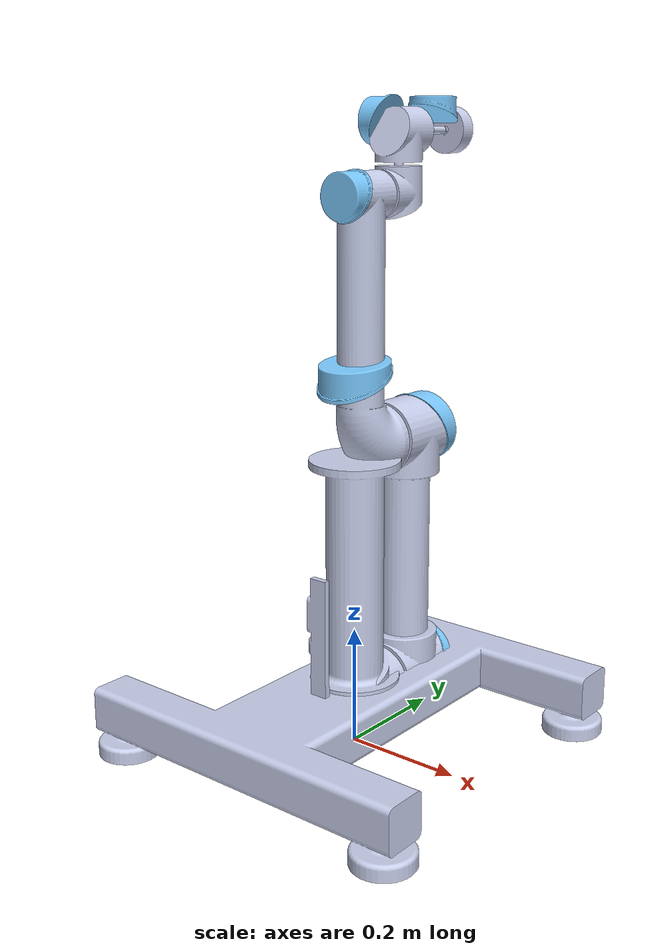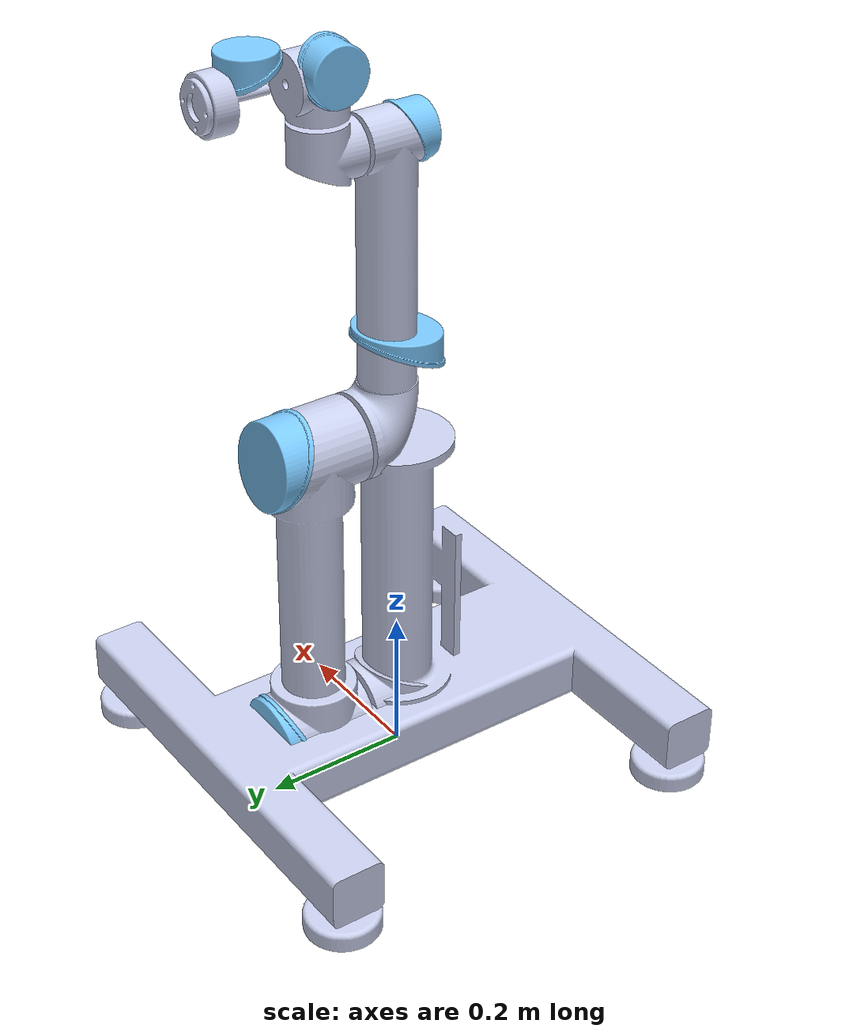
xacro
<?xml version="1.0" ?>
<robot
  name="robot_arm" xmlns:xacro="http://ros.org/wiki/xacro">
  <xacro:macro name="body_color">
    <visual>
      <material>
        <ambient>0.796078431372549 0.819607843137255 0.933333333333333 1</ambient>
        <diffuse>0.796078431372549 0.819607843137255 0.933333333333333 1</diffuse>
        <specular>0.1 0.1 0.1 1</specular>
        <emissive>0 0 0 0</emissive>
      </material>
    </visual>
  </xacro:macro>
  <xacro:macro name="cap_color">
    <visual>
      <material>
        <ambient>0.482352941176471 0.792156862745098 1 1</ambient>
        <diffuse>0.482352941176471 0.792156862745098 1 1</diffuse>
        <specular>0.1 0.1 0.1 1</specular>
        <emissive>0 0 0 0</emissive>
      </material>
    </visual>
  </xacro:macro>
  <link name="world" />
  <link
    name="base_link">
    <inertial>
      <origin
        xyz="0.000818930716522579 -0.000818930139439305 0.0140278111957652"
        rpy="0 0 0" />
      <mass
        value="0.365058052116186" />
      <inertia
        ixx="0.00051380644225505"
        ixy="-1.25381433478329E-05"
        ixz="3.47062873674803E-08"
        iyy="0.000513806425545493"
        iyz="-3.47077199058619E-08"
        izz="0.000833137426033134" />
    </inertial>
    <visual>
      <origin
        xyz="0 0 0"
        rpy="0 0 0" />
      <geometry>
        <mesh
          filename="package://project_two/meshes/base_link.STL" />
      </geometry>
      <material
        name="">
        <color
          rgba="0.792156862745098 0.819607843137255 0.933333333333333 1" />
      </material>
    </visual>
    <collision>
      <origin
        xyz="0 0 0"
        rpy="0 0 0" />
      <geometry>
        <mesh
          filename="package://project_two/meshes/base_link.STL" />
      </geometry>
    </collision>
  </link>
  <joint name="fixed_base" type="fixed">
    <parent link="world" />
    <child link="base_link" />
  </joint>
  <link
    name="link_1">
    <inertial>
      <origin
        xyz="-2.01994143885152E-08 0.0147276350283187 0.0810226747554533"
        rpy="0 0 0" />
      <mass
        value="1.21747724894722" />
      <inertia
        ixx="0.00255263718574973"
        ixy="7.20416731900228E-09"
        ixz="-3.70618686006579E-09"
        iyy="0.00210897804842468"
        iyz="-0.000297852263493"
        izz="0.00266305849374601" />
    </inertial>
    <visual>
      <origin
        xyz="0 0 0"
        rpy="0 0 0" />
      <geometry>
        <mesh
          filename="package://project_two/meshes/link_1.STL" />
      </geometry>
      <material
        name="">
        <color
          rgba="0.796078431372549 0.819607843137255 0.933333333333333 1" />
      </material>
    </visual>
    <collision>
      <origin
        xyz="0 0 0"
        rpy="0 0 0" />
      <geometry>
        <mesh
          filename="package://project_two/meshes/link_1.STL" />
      </geometry>
    </collision>
  </link>
  <joint
    name="joint_1"
    type="revolute">
    <origin
      xyz="0 0 0"
      rpy="0 0 0" />
    <parent
      link="base_link" />
    <child
      link="link_1" />
    <axis
      xyz="0 0 1" />
    <limit
      lower="-3.1416"
      upper="3.1416"
      effort="0"
      velocity="0" />
    <dynamics damping="0.7" friction="1.0"/>
  </joint>
  <link
    name="link_1_cap">
    <inertial>
      <origin
        xyz="1.42302771372066E-07 -0.00806677437392857 0.138671119640996"
        rpy="0 0 0" />
      <mass
        value="0.330021171721498" />
      <inertia
        ixx="0.000313864807069818"
        ixy="1.39841178897165E-09"
        ixz="2.28303347219796E-10"
        iyy="0.000335340499862343"
        iyz="-7.39635181857418E-05"
        izz="0.000541751266552296" />
    </inertial>
    <visual>
      <origin
        xyz="0 0 0"
        rpy="0 0 0" />
      <geometry>
        <mesh
          filename="package://project_two/meshes/link_1_cap.STL" />
      </geometry>
      <material
        name="">
        <color
          rgba="0.482352941176471 0.792156862745098 1 1" />
      </material>
    </visual>
    <collision>
      <origin
        xyz="0 0 0"
        rpy="0 0 0" />
      <geometry>
        <mesh
          filename="package://project_two/meshes/link_1_cap.STL" />
      </geometry>
    </collision>
  </link>
  <joint name="link_1_cap_joint" type="prismatic">
      <origin xyz="0 0 0" rpy="0 0 0" />
      <parent link="link_1" />
      <child link="link_1_cap" />
      <axis xyz="1 0 0" />
      <limit lower="0" upper="0" effort="0" velocity="0" />
  </joint>
  <link
    name="link_2">
    <inertial>
      <origin
        xyz="5.28224377692258E-09 -0.212110309879065 0.129614412124911"
        rpy="0 0 0" />
      <mass
        value="4.0347772255313" />
      <inertia
        ixx="0.112004707514996"
        ixy="1.49514812132019E-08"
        ixz="-4.44365415979749E-10"
        iyy="0.00580966202350412"
        iyz="1.87193857431351E-05"
        izz="0.1121524014166" />
    </inertial>
    <visual>
      <origin
        xyz="0 0 0"
        rpy="0 0 0" />
      <geometry>
        <mesh
          filename="package://project_two/meshes/link_2.STL" />
      </geometry>
      <material
        name="">
        <color
          rgba="0.792156862745098 0.819607843137255 0.933333333333333 1" />
      </material>
    </visual>
    <collision>
      <origin
        xyz="0 0 0"
        rpy="0 0 0" />
      <geometry>
        <mesh
          filename="package://project_two/meshes/link_2.STL" />
      </geometry>
    </collision>
  </link>
  <joint
    name="joint_2"
    type="revolute">
    <origin
      xyz="0 0 0.09"
      rpy="-1.5707963267949 0 0" />
    <parent
      link="link_1" />
    <child
      link="link_2" />
    <axis
      xyz="0 0 1" />
    <limit
      lower="-3.1416"
      upper="3.1416"
      effort="0"
      velocity="0" />
    <dynamics damping="0.7" friction="1.0"/>
  </joint>
  <link
    name="link_2_cap_1">
    <inertial>
      <origin
        xyz="-1.42302772727024E-07 0.00806677437392862 0.183671119640996"
        rpy="0 0 0" />
      <mass
        value="0.330021171721499" />
      <inertia
        ixx="0.000313864807069819"
        ixy="1.39841178841114E-09"
        ixz="-2.28303348779531E-10"
        iyy="0.000335340499862345"
        iyz="7.39635181857419E-05"
        izz="0.000541751266552297" />
    </inertial>
    <visual>
      <origin
        xyz="0 0 0"
        rpy="0 0 0" />
      <geometry>
        <mesh
          filename="package://project_two/meshes/link_2_cap_1.STL" />
      </geometry>
      <material
        name="">
        <color
          rgba="0.482352941176471 0.792156862745098 1 1" />
      </material>
    </visual>
    <collision>
      <origin
        xyz="0 0 0"
        rpy="0 0 0" />
      <geometry>
        <mesh
          filename="package://project_two/meshes/link_2_cap_1.STL" />
      </geometry>
    </collision>
  </link>
  <joint name="link_2_cap_1_joint" type="prismatic">
      <origin xyz="0 0 0" rpy="0 0 0" />
      <parent link="link_2" />
      <child link="link_2_cap_1" />
      <axis xyz="1 0 0" />
      <limit lower="0" upper="0" effort="0" velocity="0" />
  </joint>
  <link
    name="link_2_cap_2">
    <inertial>
      <origin
        xyz="1.42302768078402E-07 -0.433066774373929 0.183671119640996"
        rpy="0 0 0" />
      <mass
        value="0.330021171721498" />
      <inertia
        ixx="0.000313864807069817"
        ixy="1.39841178881497E-09"
        ixz="2.28303347202352E-10"
        iyy="0.00033534049986234"
        iyz="-7.39635181857418E-05"
        izz="0.000541751266552293" />
    </inertial>
    <visual>
      <origin
        xyz="0 0 0"
        rpy="0 0 0" />
      <geometry>
        <mesh
          filename="package://project_two/meshes/link_2_cap_2.STL" />
      </geometry>
      <material
        name="">
        <color
          rgba="0.482352941176471 0.792156862745098 1 1" />
      </material>
    </visual>
    <collision>
      <origin
        xyz="0 0 0"
        rpy="0 0 0" />
      <geometry>
        <mesh
          filename="package://project_two/meshes/link_2_cap_2.STL" />
      </geometry>
    </collision>
  </link>
  <joint name="link_2_cap_2_joint" type="prismatic">
    <origin xyz="0 0 0" rpy="0 0 0" />
    <parent link="link_2" />
    <child link="link_2_cap_2" />
    <axis xyz="1 0 0" />
    <limit lower="0" upper="0" effort="0" velocity="0" />
  </joint>
  <link
    name="link_3">
    <inertial>
      <origin
        xyz="0.170735221821587 -3.25840811083973E-08 0.0224616676097575"
        rpy="0 0 0" />
      <mass
        value="2.32742946004391" />
      <inertia
        ixx="0.00230746896110105"
        ixy="3.4207779530455E-08"
        ixz="0.00199952758100954"
        iyy="0.0464994251527757"
        iyz="-6.32534417374874E-10"
        izz="0.0462634575355965" />
    </inertial>
    <visual>
      <origin
        xyz="0 0 0"
        rpy="0 0 0" />
      <geometry>
        <mesh
          filename="package://project_two/meshes/link_3.STL" />
      </geometry>
      <material
        name="">
        <color
          rgba="0.788235294117647 0.819607843137255 0.933333333333333 1" />
      </material>
    </visual>
    <collision>
      <origin
        xyz="0 0 0"
        rpy="0 0 0" />
      <geometry>
        <mesh
          filename="package://project_two/meshes/link_3.STL" />
      </geometry>
    </collision>
  </link>
  <joint
    name="joint_3"
    type="revolute">
    <origin
      xyz="0 -0.425 0"
      rpy="0 0 -1.5707963267949" />
    <parent
      link="link_2" />
    <child
      link="link_3" />
    <axis
      xyz="0 0 1" />
    <limit
      lower="-3.1416"
      upper="3.1416"
      effort="0"
      velocity="0" />
    <dynamics damping="0.7" friction="1.0"/>
  </joint>
  <link
    name="link_3_cap">
    <inertial>
      <origin
        xyz="0.397027900194223 4.22453817605446E-09 -0.0224353204034724"
        rpy="0 0 0" />
      <mass
        value="0.129962415869425" />
      <inertia
        ixx="6.00214466648602E-05"
        ixy="-3.03760968261969E-11"
        ixz="-9.23419401157055E-06"
        iyy="5.70550178521916E-05"
        iyz="-1.90648141611329E-11"
        izz="9.13995513971888E-05" />
    </inertial>
    <visual>
      <origin
        xyz="0 0 0"
        rpy="0 0 0" />
      <geometry>
        <mesh
          filename="package://project_two/meshes/link_3_cap.STL" />
      </geometry>
      <material
        name="">
        <color
          rgba="0.482352941176471 0.792156862745098 1 1" />
      </material>
    </visual>
    <collision>
      <origin
        xyz="0 0 0"
        rpy="0 0 0" />
      <geometry>
        <mesh
          filename="package://project_two/meshes/link_3_cap.STL" />
      </geometry>
    </collision>
  </link>
  <joint name="link_3_cap_joint" type="prismatic">
      <origin xyz="0 0 0" rpy="0 0 0" />
      <parent link="link_3" />
      <child link="link_3_cap" />
      <axis xyz="1 0 0" />
      <limit lower="0" upper="0" effort="0" velocity="0" />
  </joint>
  <link
    name="link_4">
    <inertial>
      <origin
        xyz="2.08868109703753E-08 -0.0104204825260419 0.00625096574296091"
        rpy="0 0 0" />
      <mass
        value="0.361403101490435" />
      <inertia
        ixx="0.000347379241813699"
        ixy="-4.53086892636865E-10"
        ixz="1.81738584051007E-10"
        iyy="0.000274440792632068"
        iyz="-3.88893030652286E-05"
        izz="0.000346423259403175" />
    </inertial>
    <visual>
      <origin
        xyz="0 0 0"
        rpy="0 0 0" />
      <geometry>
        <mesh
          filename="package://project_two/meshes/link_4.STL" />
      </geometry>
      <material
        name="">
        <color
          rgba="0.796078431372549 0.819607843137255 0.933333333333333 1" />
      </material>
    </visual>
    <collision>
      <origin
        xyz="0 0 0"
        rpy="0 0 0" />
      <geometry>
        <mesh
          filename="package://project_two/meshes/link_4.STL" />
      </geometry>
    </collision>
  </link>
  <joint
    name="joint_4"
    type="revolute">
    <origin
      xyz="0.39225 0 0.1099"
      rpy="1.5707963267949 0 1.5707963267949" />
    <parent
      link="link_3" />
    <child
      link="link_4" />
    <axis
      xyz="0 1 0" />
    <limit
      lower="-3.1416"
      upper="3.1416"
      effort="0"
      velocity="0" />
    <dynamics damping="0.7" friction="1.0"/>
  </joint>
  <link
    name="link_4_cap">
    <inertial>
      <origin
        xyz="-4.22452399082911E-09 0.00477790019422317 -0.0376853204034723"
        rpy="0 0 0" />
      <mass
        value="0.129962415869424" />
      <inertia
        ixx="5.70550178521915E-05"
        ixy="3.03760968441512E-11"
        ixz="1.90648139359578E-11"
        iyy="6.00214466648598E-05"
        iyz="-9.23419401157052E-06"
        izz="9.13995513971885E-05" />
    </inertial>
    <visual>
      <origin
        xyz="0 0 0"
        rpy="0 0 0" />
      <geometry>
        <mesh
          filename="package://project_two/meshes/link_4_cap.STL" />
      </geometry>
      <material
        name="">
        <color
          rgba="0.482352941176471 0.792156862745098 1 1" />
      </material>
    </visual>
    <collision>
      <origin
        xyz="0 0 0"
        rpy="0 0 0" />
      <geometry>
        <mesh
          filename="package://project_two/meshes/link_4_cap.STL" />
      </geometry>
    </collision>
  </link>
  <joint name="link_4_cap_joint" type="prismatic">
      <origin xyz="0 0 0" rpy="0 0 0" />
      <parent link="link_4" />
      <child link="link_4_cap" />
      <axis xyz="1 0 0" />
      <limit lower="0" upper="0" effort="0" velocity="0" />
  </joint>
  <link
    name="link_5">
    <inertial>
      <origin
        xyz="-2.08867958526121E-08 0.0104204825260416 0.00625096574296091"
        rpy="0 0 0" />
      <mass
        value="0.361403101490434" />
      <inertia
        ixx="0.000347379241813699"
        ixy="-4.53086893620097E-10"
        ixz="-1.81738583678317E-10"
        iyy="0.000274440792632068"
        iyz="3.88893030652285E-05"
        izz="0.000346423259403175" />
    </inertial>
    <visual>
      <origin
        xyz="0 0 0"
        rpy="0 0 0" />
      <geometry>
        <mesh
          filename="package://project_two/meshes/link_5.STL" />
      </geometry>
      <material
        name="">
        <color
          rgba="0.792156862745098 0.819607843137255 0.933333333333333 1" />
      </material>
    </visual>
    <collision>
      <origin
        xyz="0 0 0"
        rpy="0 0 0" />
      <geometry>
        <mesh
          filename="package://project_two/meshes/link_5.STL" />
      </geometry>
    </collision>
  </link>
  <joint
    name="joint_5"
    type="revolute">
    <origin
      xyz="0 0 0.0946499999999998"
      rpy="-1.5707963267949 0 0" />
    <parent
      link="link_4" />
    <child
      link="link_5" />
    <axis
      xyz="0 -1 0" />
    <limit
      lower="-3.1416"
      upper="3.1416"
      effort="0"
      velocity="0" />
    <dynamics damping="0.7" friction="1.0"/>
  </joint>
  <link
    name="link_5_cap">
    <inertial>
      <origin
        xyz="4.22454006210197E-09 -0.00477790019422364 -0.0376853204034798"
        rpy="0 0 0" />
      <mass
        value="0.129962415869425" />
      <inertia
        ixx="5.70550178521917E-05"
        ixy="3.03760968117855E-11"
        ixz="-1.90648140818228E-11"
        iyy="6.00214466648601E-05"
        iyz="9.2341940115703E-06"
        izz="9.13995513971891E-05" />
    </inertial>
    <visual>
      <origin
        xyz="0 0 0"
        rpy="0 0 0" />
      <geometry>
        <mesh
          filename="package://project_two/meshes/link_5_cap.STL" />
      </geometry>
      <material
        name="">
        <color
          rgba="0.482352941176471 0.792156862745098 1 1" />
      </material>
    </visual>
    <collision>
      <origin
        xyz="0 0 0"
        rpy="0 0 0" />
      <geometry>
        <mesh
          filename="package://project_two/meshes/link_5_cap.STL" />
      </geometry>
    </collision>
  </link>
  <joint name="link_5_cap_joint" type="prismatic">
      <origin xyz="0 0 0" rpy="0 0 0" />
      <parent link="link_5" />
      <child link="link_5_cap" />
      <axis xyz="1 0 0" />
      <limit lower="0" upper="0" effort="0" velocity="0" />
  </joint>
  <link
    name="link_6">
    <inertial>
      <origin
        xyz="6.47588935142619E-13 -3.74367203903603E-13 -0.0211694949353718"
        rpy="0 0 0" />
      <mass
        value="0.148286360656985" />
      <inertia
        ixx="7.71175301770416E-05"
        ixy="6.59118773723624E-22"
        ixz="-7.79562353002313E-20"
        iyy="7.71175301770417E-05"
        iyz="7.0513121553266E-22"
        izz="9.81906446643079E-05" />
    </inertial>
    <visual>
      <origin
        xyz="0 0 0"
        rpy="0 0 0" />
      <geometry>
        <mesh
          filename="package://project_two/meshes/link_6.STL" />
      </geometry>
      <material
        name="">
        <color
          rgba="0.792156862745098 0.819607843137255 0.933333333333333 1" />
      </material>
    </visual>
    <collision>
      <origin
        xyz="0 0 0"
        rpy="0 0 0" />
      <geometry>
        <mesh
          filename="package://project_two/meshes/link_6.STL" />
      </geometry>
    </collision>
  </link>
  <joint
    name="joint_6"
    type="revolute">
    <origin
      xyz="0 0 0.081499999999992"
      rpy="0 0 0" />
    <parent
      link="link_5" />
    <child
      link="link_6" />
    <axis
      xyz="0 0 -1" />
    <limit
      lower="-3.1416"
      upper="3.1416"
      effort="0"
      velocity="0" />
    <dynamics damping="0.7" friction="1.0"/>
  </joint>
  <gazebo reference="base_link">
    <xacro:body_color />
  </gazebo>
  <gazebo reference="link_1">
    <xacro:body_color />
  </gazebo>
  <gazebo reference="link_2">
    <xacro:body_color />
  </gazebo>
  <gazebo reference="link_3">
    <xacro:body_color />
  </gazebo>
  <gazebo reference="link_4">
    <xacro:body_color />
  </gazebo>
  <gazebo reference="link_5">
    <xacro:body_color />
  </gazebo>
  <gazebo reference="link_6">
    <xacro:body_color />
  </gazebo>
  <gazebo reference="link_1_cap">
    <xacro:cap_color />
  </gazebo>
  <gazebo reference="link_2_cap_1">
    <xacro:cap_color />
  </gazebo>
  <gazebo reference="link_2_cap_2">
    <xacro:cap_color />
  </gazebo>
  <gazebo reference="link_3_cap">
    <xacro:cap_color />
  </gazebo>
  <gazebo reference="link_4_cap">
    <xacro:cap_color />
  </gazebo>
  <gazebo reference="link_5_cap">
    <xacro:cap_color />
  </gazebo>
  <ros2_control name="GazeboSystem" type="system">
    <hardware>
      <plugin>gazebo_ros2_control/GazeboSystem</plugin>
    </hardware>
    <joint name="joint_1">
        <command_interface name="position">
            <param name="min">-3.14</param>
            <param name="max">3.14</param>
        </command_interface>
        <state_interface name="position"/>
    </joint>
    <joint name="joint_2">
        <command_interface name="position">
            <param name="min">-3.14</param>
            <param name="max">3.14</param>
        </command_interface>
        <state_interface name="position"/>
    </joint>
    <joint name="joint_3">
        <command_interface name="position">
            <param name="min">-3.14</param>
            <param name="max">3.14</param>
        </command_interface>
        <state_interface name="position"/>
    </joint>
    <joint name="joint_4">
        <command_interface name="position">
            <param name="min">-3.14</param>
            <param name="max">3.14</param>
        </command_interface>
        <state_interface name="position"/>
    </joint>
    <joint name="joint_5">
        <command_interface name="position">
            <param name="min">-3.14</param>
            <param name="max">3.14</param>
        </command_interface>
        <state_interface name="position"/>
    </joint>
    <joint name="joint_6">
        <command_interface name="position">
            <param name="min">-3.14</param>
            <param name="max">3.14</param>
        </command_interface>
        <state_interface name="position"/>
    </joint>
  </ros2_control>
  <gazebo>
    <plugin filename="libgazebo_ros2_control.so" name="gazebo_ros2_control">
      <parameters>$(find project_two)/config/control.yaml</parameters>
    </plugin>
  </gazebo>
  <gazebo reference="joint_1">
    <implicitSpringDamper>true</implicitSpringDamper>
  </gazebo>
  <gazebo reference="joint_2">
    <implicitSpringDamper>true</implicitSpringDamper>
  </gazebo>
  <gazebo reference="joint_3">
    <implicitSpringDamper>true</implicitSpringDamper>
  </gazebo>
  <gazebo reference="joint_4">
    <implicitSpringDamper>true</implicitSpringDamper>
  </gazebo>
  <gazebo reference="joint_5">
    <implicitSpringDamper>true</implicitSpringDamper>
  </gazebo>
  <gazebo reference="joint_6">
    <implicitSpringDamper>true</implicitSpringDamper>
  </gazebo>
</robot>
